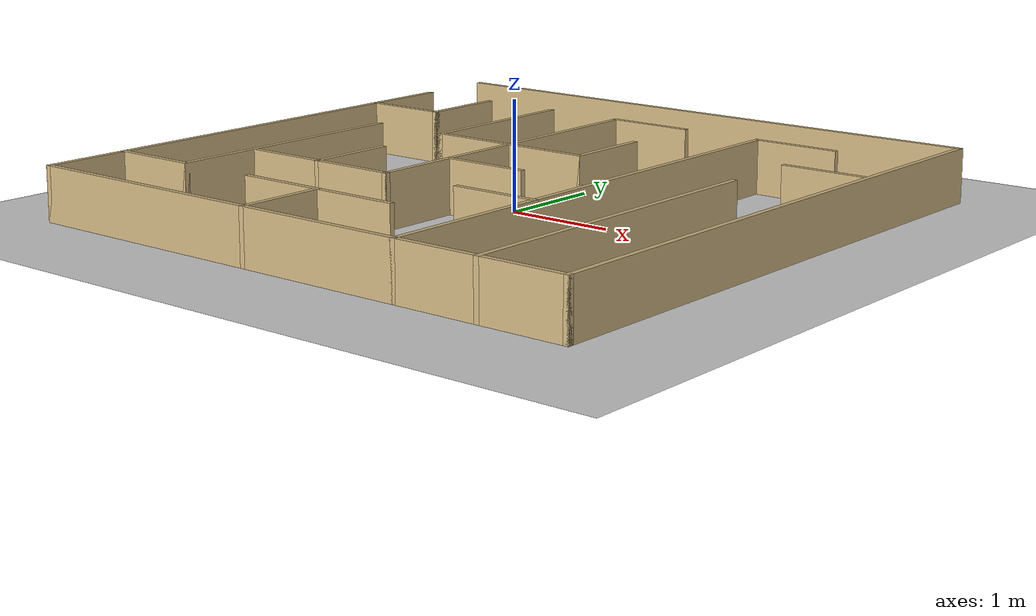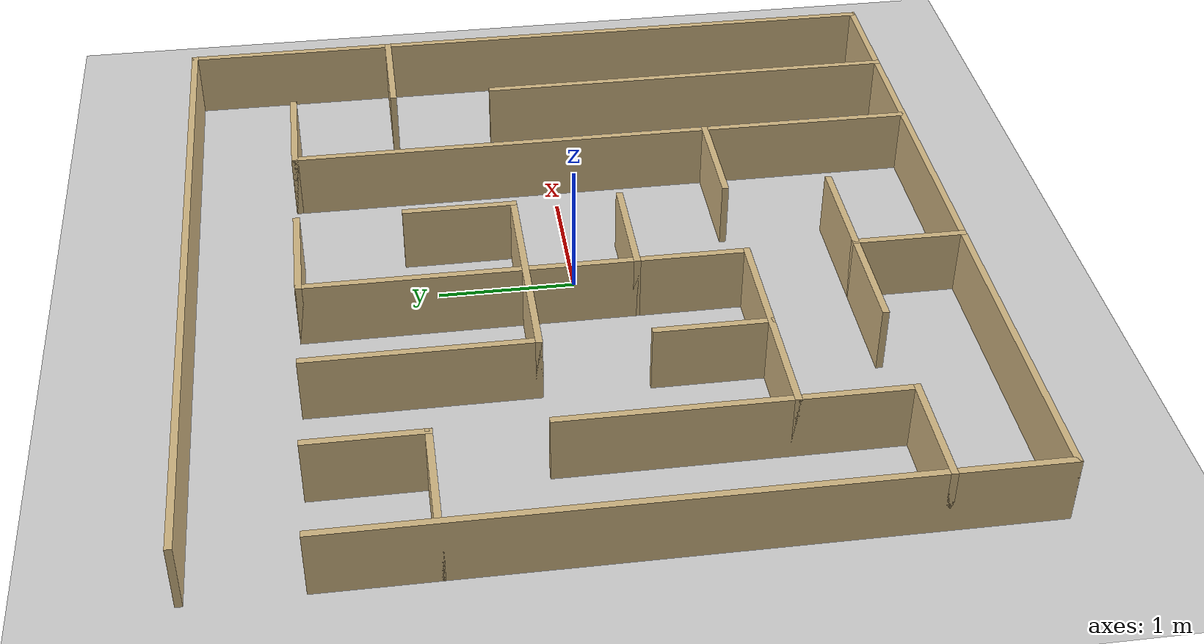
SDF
<?xml version="1.0"?>
<sdf version="1.8">
  <world name="default">
    <physics type="ode">
      <real_time_update_rate>1000.0</real_time_update_rate>
      <max_step_size>0.001</max_step_size>
      <real_time_factor>1</real_time_factor>
      <ode>
        <solver>
          <type>quick</type>
          <iters>150</iters>
          <precon_iters>0</precon_iters>
          <sor>1.400000</sor>
          <use_dynamic_moi_rescaling>1</use_dynamic_moi_rescaling>
        </solver>
        <constraints>
          <cfm>0.00001</cfm>
          <erp>0.2</erp>
          <contact_max_correcting_vel>2000.000000</contact_max_correcting_vel>
          <contact_surface_layer>0.01000</contact_surface_layer>
        </constraints>
      </ode>
    </physics>
    <plugin
      filename="gz-sim-physics-system"
      name="gz::sim::systems::Physics">
    </plugin>
    <plugin
      filename="gz-sim-user-commands-system"
      name="gz::sim::systems::UserCommands">
    </plugin>
    <plugin
      filename="gz-sim-scene-broadcaster-system"
      name="gz::sim::systems::SceneBroadcaster">
    </plugin>
    <plugin
      filename="gz-sim-sensors-system"
      name="gz::sim::systems::Sensors">
      <render_engine>ogre2</render_engine>
    </plugin>
    <plugin
      filename="gz-sim-imu-system"
      name="gz::sim::systems::Imu">
    </plugin>

    <include>
      <uri>https://fuel.gazebosim.org/1.0/OpenRobotics/models/Ground Plane</uri>
    </include>

    <include>
      <uri>https://fuel.gazebosim.org/1.0/OpenRobotics/models/Sun</uri>
    </include>

    <model name="maze_3">
      <static>true</static>
      <link name="walls">
        <collision name="wall_0_collision">
          <pose>0.000 -2.800 0.25 0 0 0</pose>
          <geometry><box><size>5.650 0.050 0.5</size></box></geometry>
        </collision>
        <visual name="wall_0_visual">
          <pose>0.000 -2.800 0.25 0 0 0</pose>
          <geometry><box><size>5.650 0.050 0.5</size></box></geometry>
          <material><ambient>0.8 0.7 0.5 1</ambient><diffuse>0.8 0.7 0.5 1</diffuse><specular>0.1 0.1 0.1 1</specular></material>
        </visual>
        <collision name="wall_1_collision">
          <pose>-2.400 -2.000 0.25 0 0 0</pose>
          <geometry><box><size>0.850 0.050 0.5</size></box></geometry>
        </collision>
        <visual name="wall_1_visual">
          <pose>-2.400 -2.000 0.25 0 0 0</pose>
          <geometry><box><size>0.850 0.050 0.5</size></box></geometry>
          <material><ambient>0.8 0.7 0.5 1</ambient><diffuse>0.8 0.7 0.5 1</diffuse><specular>0.1 0.1 0.1 1</specular></material>
        </visual>
        <collision name="wall_2_collision">
          <pose>-0.400 -2.000 0.25 0 0 0</pose>
          <geometry><box><size>1.650 0.050 0.5</size></box></geometry>
        </collision>
        <visual name="wall_2_visual">
          <pose>-0.400 -2.000 0.25 0 0 0</pose>
          <geometry><box><size>1.650 0.050 0.5</size></box></geometry>
          <material><ambient>0.8 0.7 0.5 1</ambient><diffuse>0.8 0.7 0.5 1</diffuse><specular>0.1 0.1 0.1 1</specular></material>
        </visual>
        <collision name="wall_3_collision">
          <pose>-1.200 -1.200 0.25 0 0 0</pose>
          <geometry><box><size>1.650 0.050 0.5</size></box></geometry>
        </collision>
        <visual name="wall_3_visual">
          <pose>-1.200 -1.200 0.25 0 0 0</pose>
          <geometry><box><size>1.650 0.050 0.5</size></box></geometry>
          <material><ambient>0.8 0.7 0.5 1</ambient><diffuse>0.8 0.7 0.5 1</diffuse><specular>0.1 0.1 0.1 1</specular></material>
        </visual>
        <collision name="wall_4_collision">
          <pose>0.800 -1.200 0.25 0 0 0</pose>
          <geometry><box><size>0.850 0.050 0.5</size></box></geometry>
        </collision>
        <visual name="wall_4_visual">
          <pose>0.800 -1.200 0.25 0 0 0</pose>
          <geometry><box><size>0.850 0.050 0.5</size></box></geometry>
          <material><ambient>0.8 0.7 0.5 1</ambient><diffuse>0.8 0.7 0.5 1</diffuse><specular>0.1 0.1 0.1 1</specular></material>
        </visual>
        <collision name="wall_5_collision">
          <pose>0.000 -0.400 0.25 0 0 0</pose>
          <geometry><box><size>0.850 0.050 0.5</size></box></geometry>
        </collision>
        <visual name="wall_5_visual">
          <pose>0.000 -0.400 0.25 0 0 0</pose>
          <geometry><box><size>0.850 0.050 0.5</size></box></geometry>
          <material><ambient>0.8 0.7 0.5 1</ambient><diffuse>0.8 0.7 0.5 1</diffuse><specular>0.1 0.1 0.1 1</specular></material>
        </visual>
        <collision name="wall_6_collision">
          <pose>-0.400 0.400 0.25 0 0 0</pose>
          <geometry><box><size>1.650 0.050 0.5</size></box></geometry>
        </collision>
        <visual name="wall_6_visual">
          <pose>-0.400 0.400 0.25 0 0 0</pose>
          <geometry><box><size>1.650 0.050 0.5</size></box></geometry>
          <material><ambient>0.8 0.7 0.5 1</ambient><diffuse>0.8 0.7 0.5 1</diffuse><specular>0.1 0.1 0.1 1</specular></material>
        </visual>
        <collision name="wall_7_collision">
          <pose>-2.400 1.200 0.25 0 0 0</pose>
          <geometry><box><size>0.850 0.050 0.5</size></box></geometry>
        </collision>
        <visual name="wall_7_visual">
          <pose>-2.400 1.200 0.25 0 0 0</pose>
          <geometry><box><size>0.850 0.050 0.5</size></box></geometry>
          <material><ambient>0.8 0.7 0.5 1</ambient><diffuse>0.8 0.7 0.5 1</diffuse><specular>0.1 0.1 0.1 1</specular></material>
        </visual>
        <collision name="wall_8_collision">
          <pose>2.400 1.200 0.25 0 0 0</pose>
          <geometry><box><size>0.850 0.050 0.5</size></box></geometry>
        </collision>
        <visual name="wall_8_visual">
          <pose>2.400 1.200 0.25 0 0 0</pose>
          <geometry><box><size>0.850 0.050 0.5</size></box></geometry>
          <material><ambient>0.8 0.7 0.5 1</ambient><diffuse>0.8 0.7 0.5 1</diffuse><specular>0.1 0.1 0.1 1</specular></material>
        </visual>
        <collision name="wall_9_collision">
          <pose>0.000 2.000 0.25 0 0 0</pose>
          <geometry><box><size>0.850 0.050 0.5</size></box></geometry>
        </collision>
        <visual name="wall_9_visual">
          <pose>0.000 2.000 0.25 0 0 0</pose>
          <geometry><box><size>0.850 0.050 0.5</size></box></geometry>
          <material><ambient>0.8 0.7 0.5 1</ambient><diffuse>0.8 0.7 0.5 1</diffuse><specular>0.1 0.1 0.1 1</specular></material>
        </visual>
        <collision name="wall_10_collision">
          <pose>1.600 2.000 0.25 0 0 0</pose>
          <geometry><box><size>0.850 0.050 0.5</size></box></geometry>
        </collision>
        <visual name="wall_10_visual">
          <pose>1.600 2.000 0.25 0 0 0</pose>
          <geometry><box><size>0.850 0.050 0.5</size></box></geometry>
          <material><ambient>0.8 0.7 0.5 1</ambient><diffuse>0.8 0.7 0.5 1</diffuse><specular>0.1 0.1 0.1 1</specular></material>
        </visual>
        <collision name="wall_11_collision">
          <pose>0.000 2.800 0.25 0 0 0</pose>
          <geometry><box><size>5.650 0.050 0.5</size></box></geometry>
        </collision>
        <visual name="wall_11_visual">
          <pose>0.000 2.800 0.25 0 0 0</pose>
          <geometry><box><size>5.650 0.050 0.5</size></box></geometry>
          <material><ambient>0.8 0.7 0.5 1</ambient><diffuse>0.8 0.7 0.5 1</diffuse><specular>0.1 0.1 0.1 1</specular></material>
        </visual>
        <collision name="wall_12_collision">
          <pose>-2.800 -0.400 0.25 0 0 0</pose>
          <geometry><box><size>0.050 4.850 0.5</size></box></geometry>
        </collision>
        <visual name="wall_12_visual">
          <pose>-2.800 -0.400 0.25 0 0 0</pose>
          <geometry><box><size>0.050 4.850 0.5</size></box></geometry>
          <material><ambient>0.8 0.7 0.5 1</ambient><diffuse>0.8 0.7 0.5 1</diffuse><specular>0.1 0.1 0.1 1</specular></material>
        </visual>
        <collision name="wall_13_collision">
          <pose>-2.000 -0.800 0.25 0 0 0</pose>
          <geometry><box><size>0.050 2.450 0.5</size></box></geometry>
        </collision>
        <visual name="wall_13_visual">
          <pose>-2.000 -0.800 0.25 0 0 0</pose>
          <geometry><box><size>0.050 2.450 0.5</size></box></geometry>
          <material><ambient>0.8 0.7 0.5 1</ambient><diffuse>0.8 0.7 0.5 1</diffuse><specular>0.1 0.1 0.1 1</specular></material>
        </visual>
        <collision name="wall_14_collision">
          <pose>-2.000 1.600 0.25 0 0 0</pose>
          <geometry><box><size>0.050 0.850 0.5</size></box></geometry>
        </collision>
        <visual name="wall_14_visual">
          <pose>-2.000 1.600 0.25 0 0 0</pose>
          <geometry><box><size>0.050 0.850 0.5</size></box></geometry>
          <material><ambient>0.8 0.7 0.5 1</ambient><diffuse>0.8 0.7 0.5 1</diffuse><specular>0.1 0.1 0.1 1</specular></material>
        </visual>
        <collision name="wall_15_collision">
          <pose>-1.200 -0.800 0.25 0 0 0</pose>
          <geometry><box><size>0.050 0.850 0.5</size></box></geometry>
        </collision>
        <visual name="wall_15_visual">
          <pose>-1.200 -0.800 0.25 0 0 0</pose>
          <geometry><box><size>0.050 0.850 0.5</size></box></geometry>
          <material><ambient>0.8 0.7 0.5 1</ambient><diffuse>0.8 0.7 0.5 1</diffuse><specular>0.1 0.1 0.1 1</specular></material>
        </visual>
        <collision name="wall_16_collision">
          <pose>-1.200 1.200 0.25 0 0 0</pose>
          <geometry><box><size>0.050 1.650 0.5</size></box></geometry>
        </collision>
        <visual name="wall_16_visual">
          <pose>-1.200 1.200 0.25 0 0 0</pose>
          <geometry><box><size>0.050 1.650 0.5</size></box></geometry>
          <material><ambient>0.8 0.7 0.5 1</ambient><diffuse>0.8 0.7 0.5 1</diffuse><specular>0.1 0.1 0.1 1</specular></material>
        </visual>
        <collision name="wall_17_collision">
          <pose>-0.400 -2.400 0.25 0 0 0</pose>
          <geometry><box><size>0.050 0.850 0.5</size></box></geometry>
        </collision>
        <visual name="wall_17_visual">
          <pose>-0.400 -2.400 0.25 0 0 0</pose>
          <geometry><box><size>0.050 0.850 0.5</size></box></geometry>
          <material><ambient>0.8 0.7 0.5 1</ambient><diffuse>0.8 0.7 0.5 1</diffuse><specular>0.1 0.1 0.1 1</specular></material>
        </visual>
        <collision name="wall_18_collision">
          <pose>-0.400 0.400 0.25 0 0 0</pose>
          <geometry><box><size>0.050 3.250 0.5</size></box></geometry>
        </collision>
        <visual name="wall_18_visual">
          <pose>-0.400 0.400 0.25 0 0 0</pose>
          <geometry><box><size>0.050 3.250 0.5</size></box></geometry>
          <material><ambient>0.8 0.7 0.5 1</ambient><diffuse>0.8 0.7 0.5 1</diffuse><specular>0.1 0.1 0.1 1</specular></material>
        </visual>
        <collision name="wall_19_collision">
          <pose>0.400 0.800 0.25 0 0 0</pose>
          <geometry><box><size>0.050 0.850 0.5</size></box></geometry>
        </collision>
        <visual name="wall_19_visual">
          <pose>0.400 0.800 0.25 0 0 0</pose>
          <geometry><box><size>0.050 0.850 0.5</size></box></geometry>
          <material><ambient>0.8 0.7 0.5 1</ambient><diffuse>0.8 0.7 0.5 1</diffuse><specular>0.1 0.1 0.1 1</specular></material>
        </visual>
        <collision name="wall_20_collision">
          <pose>1.200 -0.400 0.25 0 0 0</pose>
          <geometry><box><size>0.050 4.850 0.5</size></box></geometry>
        </collision>
        <visual name="wall_20_visual">
          <pose>1.200 -0.400 0.25 0 0 0</pose>
          <geometry><box><size>0.050 4.850 0.5</size></box></geometry>
          <material><ambient>0.8 0.7 0.5 1</ambient><diffuse>0.8 0.7 0.5 1</diffuse><specular>0.1 0.1 0.1 1</specular></material>
        </visual>
        <collision name="wall_21_collision">
          <pose>2.000 -1.200 0.25 0 0 0</pose>
          <geometry><box><size>0.050 3.250 0.5</size></box></geometry>
        </collision>
        <visual name="wall_21_visual">
          <pose>2.000 -1.200 0.25 0 0 0</pose>
          <geometry><box><size>0.050 3.250 0.5</size></box></geometry>
          <material><ambient>0.8 0.7 0.5 1</ambient><diffuse>0.8 0.7 0.5 1</diffuse><specular>0.1 0.1 0.1 1</specular></material>
        </visual>
        <collision name="wall_22_collision">
          <pose>2.800 0.000 0.25 0 0 0</pose>
          <geometry><box><size>0.050 5.650 0.5</size></box></geometry>
        </collision>
        <visual name="wall_22_visual">
          <pose>2.800 0.000 0.25 0 0 0</pose>
          <geometry><box><size>0.050 5.650 0.5</size></box></geometry>
          <material><ambient>0.8 0.7 0.5 1</ambient><diffuse>0.8 0.7 0.5 1</diffuse><specular>0.1 0.1 0.1 1</specular></material>
        </visual>
      </link>
    </model>
  </world>
</sdf>
